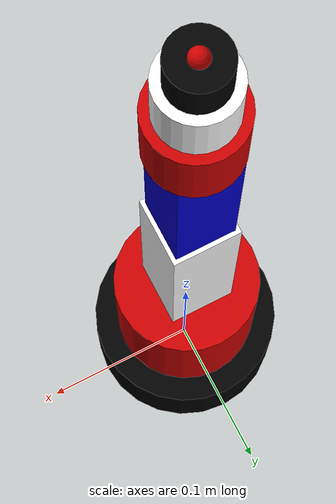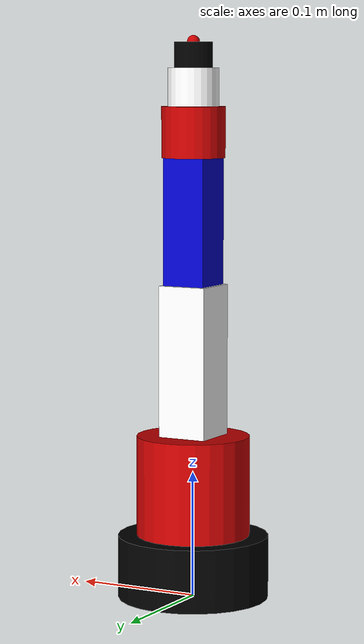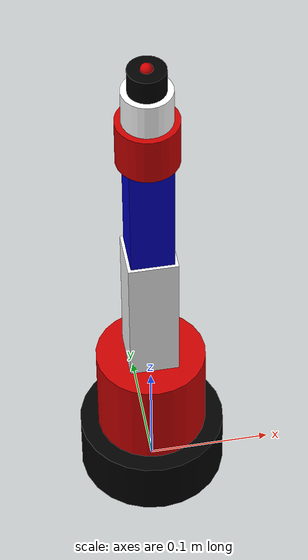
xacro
<?xml version="1.0"?>
<robot xmlns:xacro="http://ros.org/wiki/xacro" name="dofbot_pro">

  <!-- 定义一些常用的属性 -->
  <xacro:property name="PI" value="3.1415926535897931"/>

  <!-- 材质定义 -->
  <material name="black">
    <color rgba="0.0 0.0 0.0 1.0"/>
  </material>

  <material name="red">
    <color rgba="0.8 0.0 0.0 1.0"/>
  </material>

  <material name="white">
    <color rgba="1.0 1.0 1.0 1.0"/>
  </material>

  <material name="blue">
    <color rgba="0.0 0.0 0.8 1.0"/>
  </material>

  <!-- 基座链接 -->
  <link name="base_link">
    <visual>
      <origin xyz="0 0 0.025" rpy="0 0 0"/>
      <geometry>
        <cylinder radius="0.06" length="0.05"/>
      </geometry>
      <material name="black"/>
    </visual>
    <collision>
      <origin xyz="0 0 0.025" rpy="0 0 0"/>
      <geometry>
        <cylinder radius="0.06" length="0.05"/>
      </geometry>
    </collision>
    <inertial>
      <origin xyz="0 0 0.025" rpy="0 0 0"/>
      <mass value="0.5"/>
      <inertia ixx="0.001" ixy="0.0" ixz="0.0" iyy="0.001" iyz="0.0" izz="0.001"/>
    </inertial>
  </link>

  <!-- 关节1：基座旋转 -->
  <joint name="joint1" type="revolute">
    <parent link="base_link"/>
    <child link="link1"/>
    <origin xyz="0 0 0.05" rpy="0 0 0"/>
    <axis xyz="0 0 1"/>
    <limit lower="-${PI}" upper="${PI}" effort="20.0" velocity="2.0"/>
    <dynamics damping="0.1" friction="0.1"/>
  </joint>

  <!-- 链接1：第一个旋转臂 -->
  <link name="link1">
    <visual>
      <origin xyz="0 0 0.04" rpy="0 0 0"/>
      <geometry>
        <cylinder radius="0.045" length="0.08"/>
      </geometry>
      <material name="red"/>
    </visual>
    <collision>
      <origin xyz="0 0 0.04" rpy="0 0 0"/>
      <geometry>
        <cylinder radius="0.045" length="0.08"/>
      </geometry>
    </collision>
    <inertial>
      <origin xyz="0 0 0.04" rpy="0 0 0"/>
      <mass value="0.3"/>
      <inertia ixx="0.0008" ixy="0.0" ixz="0.0" iyy="0.0008" iyz="0.0" izz="0.0003"/>
    </inertial>
  </link>

  <!-- 关节2：肩部关节 -->
  <joint name="joint2" type="revolute">
    <parent link="link1"/>
    <child link="link2"/>
    <origin xyz="0 0 0.08" rpy="0 0 0"/>
    <axis xyz="0 1 0"/>
    <limit lower="-${PI/2}" upper="${PI/2}" effort="15.0" velocity="2.0"/>
    <dynamics damping="0.1" friction="0.1"/>
  </joint>

  <!-- 链接2：大臂 -->
  <link name="link2">
    <visual>
      <origin xyz="0 0 0.06" rpy="0 0 0"/>
      <geometry>
        <box size="0.04 0.04 0.12"/>
      </geometry>
      <material name="white"/>
    </visual>
    <collision>
      <origin xyz="0 0 0.06" rpy="0 0 0"/>
      <geometry>
        <box size="0.04 0.04 0.12"/>
      </geometry>
    </collision>
    <inertial>
      <origin xyz="0 0 0.06" rpy="0 0 0"/>
      <mass value="0.4"/>
      <inertia ixx="0.0016" ixy="0.0" ixz="0.0" iyy="0.0016" iyz="0.0" izz="0.0003"/>
    </inertial>
  </link>

  <!-- 关节3：肘部关节 -->
  <joint name="joint3" type="revolute">
    <parent link="link2"/>
    <child link="link3"/>
    <origin xyz="0 0 0.12" rpy="0 0 0"/>
    <axis xyz="0 1 0"/>
    <limit lower="-${PI/2}" upper="${PI/2}" effort="10.0" velocity="2.0"/>
    <dynamics damping="0.1" friction="0.1"/>
  </joint>

  <!-- 链接3：小臂 -->
  <link name="link3">
    <visual>
      <origin xyz="0 0 0.05" rpy="0 0 0"/>
      <geometry>
        <box size="0.035 0.035 0.10"/>
      </geometry>
      <material name="blue"/>
    </visual>
    <collision>
      <origin xyz="0 0 0.05" rpy="0 0 0"/>
      <geometry>
        <box size="0.035 0.035 0.10"/>
      </geometry>
    </collision>
    <inertial>
      <origin xyz="0 0 0.05" rpy="0 0 0"/>
      <mass value="0.3"/>
      <inertia ixx="0.0008" ixy="0.0" ixz="0.0" iyy="0.0008" iyz="0.0" izz="0.0002"/>
    </inertial>
  </link>

  <!-- 关节4：手腕旋转 -->
  <joint name="joint4" type="revolute">
    <parent link="link3"/>
    <child link="link4"/>
    <origin xyz="0 0 0.10" rpy="0 0 0"/>
    <axis xyz="0 0 1"/>
    <limit lower="-${PI}" upper="${PI}" effort="8.0" velocity="3.0"/>
    <dynamics damping="0.05" friction="0.05"/>
  </joint>

  <!-- 链接4：手腕 -->
  <link name="link4">
    <visual>
      <origin xyz="0 0 0.02" rpy="0 0 0"/>
      <geometry>
        <cylinder radius="0.025" length="0.04"/>
      </geometry>
      <material name="red"/>
    </visual>
    <collision>
      <origin xyz="0 0 0.02" rpy="0 0 0"/>
      <geometry>
        <cylinder radius="0.025" length="0.04"/>
      </geometry>
    </collision>
    <inertial>
      <origin xyz="0 0 0.02" rpy="0 0 0"/>
      <mass value="0.2"/>
      <inertia ixx="0.0002" ixy="0.0" ixz="0.0" iyy="0.0002" iyz="0.0" izz="0.0001"/>
    </inertial>
  </link>

  <!-- 关节5：手腕俯仰 -->
  <joint name="joint5" type="revolute">
    <parent link="link4"/>
    <child link="link5"/>
    <origin xyz="0 0 0.04" rpy="0 0 0"/>
    <axis xyz="0 1 0"/>
    <limit lower="-${PI/2}" upper="${PI/2}" effort="5.0" velocity="3.0"/>
    <dynamics damping="0.05" friction="0.05"/>
  </joint>

  <!-- 链接5：手腕末端 -->
  <link name="link5">
    <visual>
      <origin xyz="0 0 0.015" rpy="0 0 0"/>
      <geometry>
        <cylinder radius="0.02" length="0.03"/>
      </geometry>
      <material name="white"/>
    </visual>
    <collision>
      <origin xyz="0 0 0.015" rpy="0 0 0"/>
      <geometry>
        <cylinder radius="0.02" length="0.03"/>
      </geometry>
    </collision>
    <inertial>
      <origin xyz="0 0 0.015" rpy="0 0 0"/>
      <mass value="0.15"/>
      <inertia ixx="0.0001" ixy="0.0" ixz="0.0" iyy="0.0001" iyz="0.0" izz="0.00005"/>
    </inertial>
  </link>

  <!-- 关节6：末端旋转 -->
  <joint name="joint6" type="revolute">
    <parent link="link5"/>
    <child link="link6"/>
    <origin xyz="0 0 0.03" rpy="0 0 0"/>
    <axis xyz="0 0 1"/>
    <limit lower="-${PI}" upper="${PI}" effort="3.0" velocity="4.0"/>
    <dynamics damping="0.05" friction="0.05"/>
  </joint>

  <!-- 链接6：末端执行器 -->
  <link name="link6">
    <visual>
      <origin xyz="0 0 0.01" rpy="0 0 0"/>
      <geometry>
        <cylinder radius="0.015" length="0.02"/>
      </geometry>
      <material name="black"/>
    </visual>
    <collision>
      <origin xyz="0 0 0.01" rpy="0 0 0"/>
      <geometry>
        <cylinder radius="0.015" length="0.02"/>
      </geometry>
    </collision>
    <inertial>
      <origin xyz="0 0 0.01" rpy="0 0 0"/>
      <mass value="0.1"/>
      <inertia ixx="0.00005" ixy="0.0" ixz="0.0" iyy="0.00005" iyz="0.0" izz="0.00002"/>
    </inertial>
  </link>

  <!-- 末端执行器坐标系 -->
  <joint name="ee_joint" type="fixed">
    <parent link="link6"/>
    <child link="end_effector"/>
    <origin xyz="0 0 0.02" rpy="0 0 0"/>
  </joint>

  <link name="end_effector">
    <visual>
      <origin xyz="0 0 0" rpy="0 0 0"/>
      <geometry>
        <sphere radius="0.005"/>
      </geometry>
      <material name="red"/>
    </visual>
  </link>

  <!-- Gazebo仿真配置 -->
  <gazebo>
    <plugin name="gazebo_ros_control" filename="libgazebo_ros_control.so">
      <robotNamespace>/dofbot_pro</robotNamespace>
    </plugin>
  </gazebo>

  <!-- 为每个关节添加Gazebo配置 -->
  <gazebo reference="base_link">
    <material>Gazebo/Black</material>
  </gazebo>

  <gazebo reference="link1">
    <material>Gazebo/Red</material>
  </gazebo>

  <gazebo reference="link2">
    <material>Gazebo/White</material>
  </gazebo>

  <gazebo reference="link3">
    <material>Gazebo/Blue</material>
  </gazebo>

  <gazebo reference="link4">
    <material>Gazebo/Red</material>
  </gazebo>

  <gazebo reference="link5">
    <material>Gazebo/White</material>
  </gazebo>

  <gazebo reference="link6">
    <material>Gazebo/Black</material>
  </gazebo>

  <!-- ROS2控制配置 -->
  <ros2_control name="DofbotProHardwareInterface" type="system">
    <hardware>
      <plugin>gazebo_ros2_control/GazeboSystem</plugin>
    </hardware>

    <joint name="joint1">
      <command_interface name="position">
        <param name="min">-3.14159</param>
        <param name="max">3.14159</param>
      </command_interface>
      <state_interface name="position"/>
      <state_interface name="velocity"/>
    </joint>

    <joint name="joint2">
      <command_interface name="position">
        <param name="min">-1.5708</param>
        <param name="max">1.5708</param>
      </command_interface>
      <state_interface name="position"/>
      <state_interface name="velocity"/>
    </joint>

    <joint name="joint3">
      <command_interface name="position">
        <param name="min">-1.5708</param>
        <param name="max">1.5708</param>
      </command_interface>
      <state_interface name="position"/>
      <state_interface name="velocity"/>
    </joint>

    <joint name="joint4">
      <command_interface name="position">
        <param name="min">-3.14159</param>
        <param name="max">3.14159</param>
      </command_interface>
      <state_interface name="position"/>
      <state_interface name="velocity"/>
    </joint>

    <joint name="joint5">
      <command_interface name="position">
        <param name="min">-1.5708</param>
        <param name="max">1.5708</param>
      </command_interface>
      <state_interface name="position"/>
      <state_interface name="velocity"/>
    </joint>

    <joint name="joint6">
      <command_interface name="position">
        <param name="min">-3.14159</param>
        <param name="max">3.14159</param>
      </command_interface>
      <state_interface name="position"/>
      <state_interface name="velocity"/>
    </joint>
  </ros2_control>

  <gazebo>
    <plugin filename="libgazebo_ros2_control.so" name="gazebo_ros2_control">
      <robot_param>robot_description</robot_param>
      <robot_param_node>robot_state_publisher</robot_param_node>
      <parameters>/home/jetson/aichess/src/chess_description/config/dofbot_pro_controllers.yaml</parameters>
    </plugin>
  </gazebo>

</robot>
